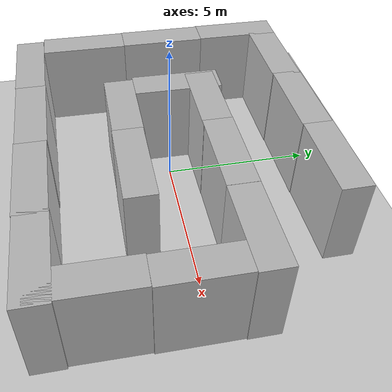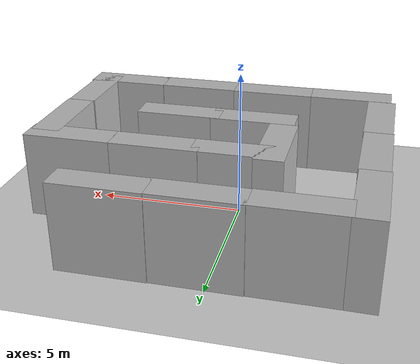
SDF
<sdf version="1.7">
 <world name="default">
  <light name="sun" type="directional">
   <pose>0 0 10 0 -0 0</pose>
   <diffuse>0.8 0.8 0.8 1</diffuse>
   <specular>0.2 0.2 0.2 1</specular>
   <attenuation>
    <range>1000</range>
    <constant>0.9</constant>
    <linear>0.01</linear>
    <quadratic>0.001</quadratic>
   </attenuation>
   <direction>-0.5 0.1 -0.9</direction>
   <spot><inner_angle>0</inner_angle><outer_angle>0</outer_angle><falloff>0</falloff></spot>
  </light>
  <model name="ground_plane">
   <static>1</static>
   <link name="link">
    <collision name="collision">
     <geometry><plane><normal>0 0 1</normal><size>100 100</size></plane></geometry>
     <surface>
      <contact><collide_bitmask>65535</collide_bitmask></contact>
      <friction><ode><mu>100</mu><mu2>50</mu2></ode></friction>
     </surface>
    </collision>
    <visual name="visual">
     <cast_shadows>0</cast_shadows>
     <geometry><plane><normal>0 0 1</normal><size>100 100</size></plane></geometry>
     <material>
      <script><uri>file://media/materials/scripts/gazebo.material</uri><name>Gazebo/Grey</name></script>
     </material>
    </visual>
   </link>
  </model>
  <gravity>0 0 -9.8</gravity>
  <magnetic_field>6e-06 2.3e-05 -4.2e-05</magnetic_field>
  <atmosphere type="adiabatic"/>
  <physics type="ode">
   <max_step_size>0.001</max_step_size>
   <real_time_factor>1</real_time_factor>
   <real_time_update_rate>1000</real_time_update_rate>
  </physics>
  <scene><ambient>0.4 0.4 0.4 1</ambient><background>0.7 0.7 0.7 1</background><shadows>1</shadows></scene>
  <audio><device>default</device></audio>
  <spherical_coordinates>
   <surface_model>EARTH_WGS84</surface_model>
   <latitude_deg>0</latitude_deg>
   <longitude_deg>0</longitude_deg>
   <elevation>0</elevation>
   <heading_deg>0</heading_deg>
  </spherical_coordinates>
  <model name="brick_box_3x1x3">
   <static>1</static>
   <link name="chassis">
    <pose>0 0 1.5 0 -0 0</pose>
    <collision name="collision"><geometry><box><size>3 1 3</size></box></geometry></collision>
    <visual name="visual">
     <geometry><mesh><uri>model://brick_box_3x1x3/meshes/simple_box.dae</uri><scale>3 1 3</scale></mesh></geometry>
     <material>
      <script>
       <uri>model://brick_box_3x1x3/materials/scripts</uri>
       <uri>model://brick_box_3x1x3/materials/textures</uri>
       <name>BrickBox/Diffuse</name>
      </script>
     </material>
    </visual>
   </link>
   <pose>2.49743 1.37008 0 0 -0 0</pose>
  </model>
  <model name="brick_box_3x1x3_0">
   <static>1</static>
   <link name="chassis">
    <pose>0 0 1.5 0 -0 0</pose>
    <collision name="collision"><geometry><box><size>3 1 3</size></box></geometry></collision>
    <visual name="visual">
     <geometry><mesh><uri>model://brick_box_3x1x3/meshes/simple_box.dae</uri><scale>3 1 3</scale></mesh></geometry>
     <material>
      <script>
       <uri>model://brick_box_3x1x3/materials/scripts</uri>
       <uri>model://brick_box_3x1x3/materials/textures</uri>
       <name>BrickBox/Diffuse</name>
      </script>
     </material>
    </visual>
   </link>
   <pose>2.48644 -1.52061 0 0 -0 0</pose>
  </model>
  <model name="brick_box_3x1x3_1">
   <static>1</static>
   <link name="chassis">
    <pose>0 0 1.5 0 -0 0</pose>
    <collision name="collision"><geometry><box><size>3 1 3</size></box></geometry></collision>
    <visual name="visual">
     <geometry><mesh><uri>model://brick_box_3x1x3/meshes/simple_box.dae</uri><scale>3 1 3</scale></mesh></geometry>
     <material>
      <script>
       <uri>model://brick_box_3x1x3/materials/scripts</uri>
       <uri>model://brick_box_3x1x3/materials/textures</uri>
       <name>BrickBox/Diffuse</name>
      </script>
     </material>
    </visual>
   </link>
   <pose>5.50078 1.36684 0 0 -0 0</pose>
  </model>
  <model name="brick_box_3x1x3_2">
   <static>1</static>
   <link name="chassis">
    <pose>0 0 1.5 0 -0 0</pose>
    <collision name="collision"><geometry><box><size>3 1 3</size></box></geometry></collision>
    <visual name="visual">
     <geometry><mesh><uri>model://brick_box_3x1x3/meshes/simple_box.dae</uri><scale>3 1 3</scale></mesh></geometry>
     <material>
      <script>
       <uri>model://brick_box_3x1x3/materials/scripts</uri>
       <uri>model://brick_box_3x1x3/materials/textures</uri>
       <name>BrickBox/Diffuse</name>
      </script>
     </material>
    </visual>
   </link>
   <pose>6.46587 -0.189706 0 0 -0 1.56689</pose>
  </model>
  <model name="brick_box_3x1x3_1_clone">
   <static>1</static>
   <link name="chassis">
    <pose>0 0 1.5 0 -0 0</pose>
    <collision name="collision"><geometry><box><size>3 1 3</size></box></geometry></collision>
    <visual name="visual">
     <geometry><mesh><uri>model://brick_box_3x1x3/meshes/simple_box.dae</uri><scale>3 1 3</scale></mesh></geometry>
     <material>
      <script>
       <uri>model://brick_box_3x1x3/materials/scripts</uri>
       <uri>model://brick_box_3x1x3/materials/textures</uri>
       <name>BrickBox/Diffuse</name>
      </script>
     </material>
    </visual>
   </link>
   <pose>5.46005 -4.48997 0 0 -0 0</pose>
  </model>
  <model name="brick_box_3x1x3_2_clone">
   <static>1</static>
   <link name="chassis">
    <pose>0 0 1.5 0 -0 0</pose>
    <collision name="collision"><geometry><box><size>3 1 3</size></box></geometry></collision>
    <visual name="visual">
     <geometry><mesh><uri>model://brick_box_3x1x3/meshes/simple_box.dae</uri><scale>3 1 3</scale></mesh></geometry>
     <material>
      <script>
       <uri>model://brick_box_3x1x3/materials/scripts</uri>
       <uri>model://brick_box_3x1x3/materials/textures</uri>
       <name>BrickBox/Diffuse</name>
      </script>
     </material>
    </visual>
   </link>
   <pose>6.4061 -3.18886 0 0 0 -1.58301</pose>
  </model>
  <model name="brick_box_3x1x3_0_clone">
   <static>1</static>
   <link name="chassis">
    <pose>0 0 1.5 0 -0 0</pose>
    <collision name="collision"><geometry><box><size>3 1 3</size></box></geometry></collision>
    <visual name="visual">
     <geometry><mesh><uri>model://brick_box_3x1x3/meshes/simple_box.dae</uri><scale>3 1 3</scale></mesh></geometry>
     <material>
      <script>
       <uri>model://brick_box_3x1x3/materials/scripts</uri>
       <uri>model://brick_box_3x1x3/materials/textures</uri>
       <name>BrickBox/Diffuse</name>
      </script>
     </material>
    </visual>
   </link>
   <pose>2.57709 -4.50879 0 0 -0 0</pose>
  </model>
  <model name="brick_box_3x1x3_0_clone_clone">
   <static>1</static>
   <link name="chassis">
    <pose>0 0 1.5 0 -0 0</pose>
    <collision name="collision"><geometry><box><size>3 1 3</size></box></geometry></collision>
    <visual name="visual">
     <geometry><mesh><uri>model://brick_box_3x1x3/meshes/simple_box.dae</uri><scale>3 1 3</scale></mesh></geometry>
     <material>
      <script>
       <uri>model://brick_box_3x1x3/materials/scripts</uri>
       <uri>model://brick_box_3x1x3/materials/textures</uri>
       <name>BrickBox/Diffuse</name>
      </script>
     </material>
    </visual>
   </link>
   <pose>-0.203536 -1.5037 0 0 -0 0</pose>
  </model>
  <model name="brick_box_3x1x3_2_clone_0">
   <static>1</static>
   <link name="chassis">
    <pose>0 0 1.5 0 -0 0</pose>
    <collision name="collision"><geometry><box><size>3 1 3</size></box></geometry></collision>
    <visual name="visual">
     <geometry><mesh><uri>model://brick_box_3x1x3/meshes/simple_box.dae</uri><scale>3 1 3</scale></mesh></geometry>
     <material>
      <script>
       <uri>model://brick_box_3x1x3/materials/scripts</uri>
       <uri>model://brick_box_3x1x3/materials/textures</uri>
       <name>BrickBox/Diffuse</name>
      </script>
     </material>
    </visual>
   </link>
   <pose>-1.31896 0.484595 0 0 0 -1.58301</pose>
  </model>
  <model name="brick_box_3x1x3_clone">
   <static>1</static>
   <link name="chassis">
    <pose>0 0 1.5 0 -0 0</pose>
    <collision name="collision"><geometry><box><size>3 1 3</size></box></geometry></collision>
    <visual name="visual">
     <geometry><mesh><uri>model://brick_box_3x1x3/meshes/simple_box.dae</uri><scale>3 1 3</scale></mesh></geometry>
     <material>
      <script>
       <uri>model://brick_box_3x1x3/materials/scripts</uri>
       <uri>model://brick_box_3x1x3/materials/textures</uri>
       <name>BrickBox/Diffuse</name>
      </script>
     </material>
    </visual>
   </link>
   <pose>-0.223367 1.36036 0 0 -0 0</pose>
  </model>
  <model name="brick_box_3x1x3_0_clone_clone_0">
   <static>1</static>
   <link name="chassis">
    <pose>0 0 1.5 0 -0 0</pose>
    <collision name="collision"><geometry><box><size>3 1 3</size></box></geometry></collision>
    <visual name="visual">
     <geometry><mesh><uri>model://brick_box_3x1x3/meshes/simple_box.dae</uri><scale>3 1 3</scale></mesh></geometry>
     <material>
      <script>
       <uri>model://brick_box_3x1x3/materials/scripts</uri>
       <uri>model://brick_box_3x1x3/materials/textures</uri>
       <name>BrickBox/Diffuse</name>
      </script>
     </material>
    </visual>
   </link>
   <pose>-0.409348 -4.4889 0 0 -0 0</pose>
  </model>
  <model name="brick_box_3x1x3_0_clone_clone_0_clone">
   <static>1</static>
   <link name="chassis">
    <pose>0 0 1.5 0 -0 0</pose>
    <collision name="collision"><geometry><box><size>3 1 3</size></box></geometry></collision>
    <visual name="visual">
     <geometry><mesh><uri>model://brick_box_3x1x3/meshes/simple_box.dae</uri><scale>3 1 3</scale></mesh></geometry>
     <material>
      <script>
       <uri>model://brick_box_3x1x3/materials/scripts</uri>
       <uri>model://brick_box_3x1x3/materials/textures</uri>
       <name>BrickBox/Diffuse</name>
      </script>
     </material>
    </visual>
   </link>
   <pose>-3.39156 -4.50261 0 0 -0 0</pose>
  </model>
  <model name="brick_box_3x1x3_2_clone_0_clone">
   <static>1</static>
   <link name="chassis">
    <pose>0 0 1.5 0 -0 0</pose>
    <collision name="collision"><geometry><box><size>3 1 3</size></box></geometry></collision>
    <visual name="visual">
     <geometry><mesh><uri>model://brick_box_3x1x3/meshes/simple_box.dae</uri><scale>3 1 3</scale></mesh></geometry>
     <material>
      <script>
       <uri>model://brick_box_3x1x3/materials/scripts</uri>
       <uri>model://brick_box_3x1x3/materials/textures</uri>
       <name>BrickBox/Diffuse</name>
      </script>
     </material>
    </visual>
   </link>
   <pose>-4.53658 -2.49595 0 0 0 -1.58301</pose>
  </model>
  <model name="brick_box_3x1x3_2_clone_0_clone_clone">
   <static>1</static>
   <link name="chassis">
    <pose>0 0 1.5 0 -0 0</pose>
    <collision name="collision"><geometry><box><size>3 1 3</size></box></geometry></collision>
    <visual name="visual">
     <geometry><mesh><uri>model://brick_box_3x1x3/meshes/simple_box.dae</uri><scale>3 1 3</scale></mesh></geometry>
     <material>
      <script>
       <uri>model://brick_box_3x1x3/materials/scripts</uri>
       <uri>model://brick_box_3x1x3/materials/textures</uri>
       <name>BrickBox/Diffuse</name>
      </script>
     </material>
    </visual>
   </link>
   <pose>-4.52384 0.478793 0 0 0 -1.58301</pose>
  </model>
  <model name="brick_box_3x1x3_2_clone_0_clone_clone_clone">
   <static>1</static>
   <link name="chassis">
    <pose>0 0 1.5 0 -0 0</pose>
    <collision name="collision"><geometry><box><size>3 1 3</size></box></geometry></collision>
    <visual name="visual">
     <geometry><mesh><uri>model://brick_box_3x1x3/meshes/simple_box.dae</uri><scale>3 1 3</scale></mesh></geometry>
     <material>
      <script>
       <uri>model://brick_box_3x1x3/materials/scripts</uri>
       <uri>model://brick_box_3x1x3/materials/textures</uri>
       <name>BrickBox/Diffuse</name>
      </script>
     </material>
    </visual>
   </link>
   <pose>-4.5195 3.42424 0 0 0 -1.58301</pose>
  </model>
  <model name="brick_box_3x1x3_clone_clone">
   <static>1</static>
   <link name="chassis">
    <pose>0 0 1.5 0 -0 0</pose>
    <collision name="collision"><geometry><box><size>3 1 3</size></box></geometry></collision>
    <visual name="visual">
     <geometry><mesh><uri>model://brick_box_3x1x3/meshes/simple_box.dae</uri><scale>3 1 3</scale></mesh></geometry>
     <material>
      <script>
       <uri>model://brick_box_3x1x3/materials/scripts</uri>
       <uri>model://brick_box_3x1x3/materials/textures</uri>
       <name>BrickBox/Diffuse</name>
      </script>
     </material>
    </visual>
   </link>
   <pose>-2.60457 4.41825 0 0 -0 0</pose>
  </model>
  <model name="brick_box_3x1x3_clone_clone_0">
   <static>1</static>
   <link name="chassis">
    <pose>0 0 1.5 0 -0 0</pose>
    <collision name="collision"><geometry><box><size>3 1 3</size></box></geometry></collision>
    <visual name="visual">
     <geometry><mesh><uri>model://brick_box_3x1x3/meshes/simple_box.dae</uri><scale>3 1 3</scale></mesh></geometry>
     <material>
      <script>
       <uri>model://brick_box_3x1x3/materials/scripts</uri>
       <uri>model://brick_box_3x1x3/materials/textures</uri>
       <name>BrickBox/Diffuse</name>
      </script>
     </material>
    </visual>
   </link>
   <pose>0.308278 4.43781 0 0 -0 0</pose>
  </model>
  <model name="brick_box_3x1x3_clone_clone_1">
   <static>1</static>
   <link name="chassis">
    <pose>0 0 1.5 0 -0 0</pose>
    <collision name="collision"><geometry><box><size>3 1 3</size></box></geometry></collision>
    <visual name="visual">
     <geometry><mesh><uri>model://brick_box_3x1x3/meshes/simple_box.dae</uri><scale>3 1 3</scale></mesh></geometry>
     <material>
      <script>
       <uri>model://brick_box_3x1x3/materials/scripts</uri>
       <uri>model://brick_box_3x1x3/materials/textures</uri>
       <name>BrickBox/Diffuse</name>
      </script>
     </material>
    </visual>
   </link>
   <pose>3.25211 4.45725 0 0 -0 0</pose>
  </model>
 </world>
</sdf>
